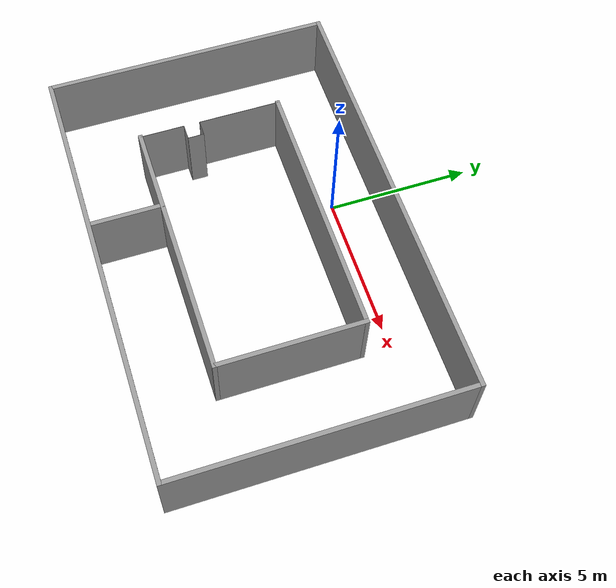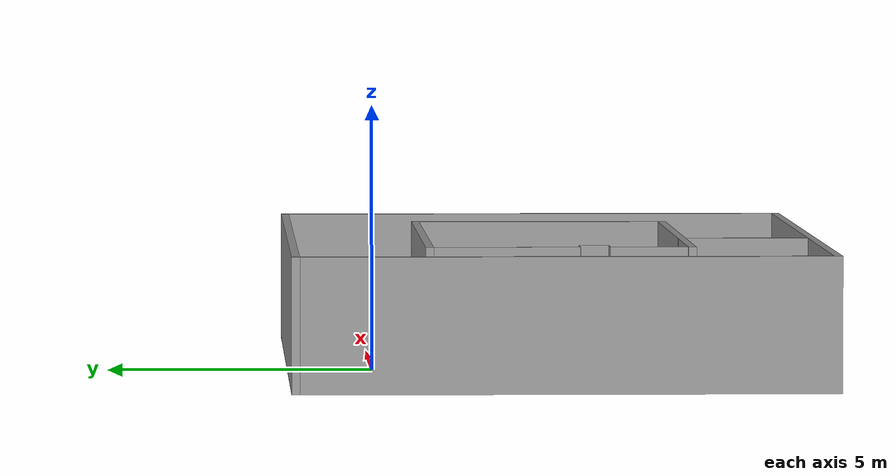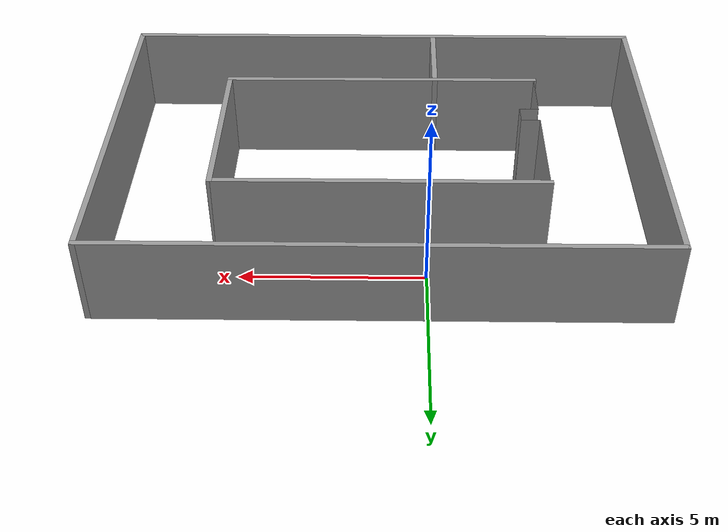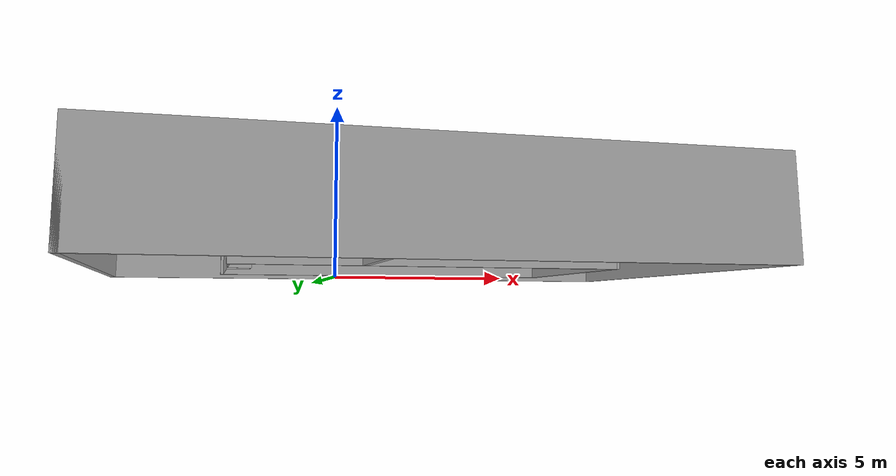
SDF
<?xml version='1.0'?>
<sdf version='1.6'>
  <model name='circle_parking'>
    <pose frame=''>1.24064 -3.39128 0 0 -0 0</pose>
    <link name='Wall_12'>
      <collision name='Wall_12_Collision'>
        <geometry>
          <box>
            <size>15 0.15 2.5</size>
          </box>
        </geometry>
        <pose frame=''>0 0 1.25 0 -0 0</pose>
      </collision>
      <visual name='Wall_12_Visual'>
        <pose frame=''>0 0 1.25 0 -0 0</pose>
        <geometry>
          <box>
            <size>15 0.15 2.5</size>
          </box>
        </geometry>
        <material>
          <script>
            <uri>file://media/materials/scripts/gazebo.material</uri>
            <name>Gazebo/Grey</name>
          </script>
          <ambient>1 1 1 1</ambient>
        </material>
        <meta>
          <layer>0</layer>
        </meta>
      </visual>
      <pose frame=''>0 -4.925 0 0 -0 0</pose>
    </link>
    <link name='Wall_13'>
      <collision name='Wall_13_Collision'>
        <geometry>
          <box>
            <size>10 0.15 2.5</size>
          </box>
        </geometry>
        <pose frame=''>0 0 1.25 0 -0 0</pose>
      </collision>
      <visual name='Wall_13_Visual'>
        <pose frame=''>0 0 1.25 0 -0 0</pose>
        <geometry>
          <box>
            <size>10 0.15 2.5</size>
          </box>
        </geometry>
        <material>
          <script>
            <uri>file://media/materials/scripts/gazebo.material</uri>
            <name>Gazebo/Grey</name>
          </script>
          <ambient>1 1 1 1</ambient>
        </material>
        <meta>
          <layer>0</layer>
        </meta>
      </visual>
      <pose frame=''>7.425 -0 0 0 -0 1.5708</pose>
    </link>
    <link name='Wall_14'>
      <collision name='Wall_14_Collision'>
        <geometry>
          <box>
            <size>15 0.15 2.5</size>
          </box>
        </geometry>
        <pose frame=''>0 0 1.25 0 -0 0</pose>
      </collision>
      <visual name='Wall_14_Visual'>
        <pose frame=''>0 0 1.25 0 -0 0</pose>
        <geometry>
          <box>
            <size>15 0.15 2.5</size>
          </box>
        </geometry>
        <material>
          <script>
            <uri>file://media/materials/scripts/gazebo.material</uri>
            <name>Gazebo/Grey</name>
          </script>
          <ambient>1 1 1 1</ambient>
        </material>
        <meta>
          <layer>0</layer>
        </meta>
      </visual>
      <pose frame=''>0 4.925 0 0 -0 3.14159</pose>
    </link>
    <link name='Wall_15'>
      <collision name='Wall_15_Collision'>
        <geometry>
          <box>
            <size>10 0.15 2.5</size>
          </box>
        </geometry>
        <pose frame=''>0 0 1.25 0 -0 0</pose>
      </collision>
      <visual name='Wall_15_Visual'>
        <pose frame=''>0 0 1.25 0 -0 0</pose>
        <geometry>
          <box>
            <size>10 0.15 2.5</size>
          </box>
        </geometry>
        <material>
          <script>
            <uri>file://media/materials/scripts/gazebo.material</uri>
            <name>Gazebo/Grey</name>
          </script>
          <ambient>1 1 1 1</ambient>
        </material>
        <meta>
          <layer>0</layer>
        </meta>
      </visual>
      <pose frame=''>-7.425 -0 0 0 -0 -1.5708</pose>
    </link>
    <link name='Wall_17'>
      <collision name='Wall_17_Collision'>
        <geometry>
          <box>
            <size>9 0.15 2.5</size>
          </box>
        </geometry>
        <pose frame=''>0 0 1.25 0 -0 0</pose>
      </collision>
      <visual name='Wall_17_Visual'>
        <pose frame=''>0 0 1.25 0 -0 0</pose>
        <geometry>
          <box>
            <size>9 0.15 2.5</size>
          </box>
        </geometry>
        <material>
          <script>
            <uri>file://media/materials/scripts/gazebo.material</uri>
            <name>Gazebo/Grey</name>
          </script>
          <ambient>1 1 1 1</ambient>
        </material>
        <meta>
          <layer>0</layer>
        </meta>
      </visual>
      <pose frame=''>0.014124 2.40104 0 0 -0 -5.5e-05</pose>
    </link>
    <link name='Wall_18'>
      <collision name='Wall_18_Collision'>
        <geometry>
          <box>
            <size>5 0.15 2.5</size>
          </box>
        </geometry>
        <pose frame=''>0 0 1.25 0 -0 0</pose>
      </collision>
      <visual name='Wall_18_Visual'>
        <pose frame=''>0 0 1.25 0 -0 0</pose>
        <geometry>
          <box>
            <size>5 0.15 2.5</size>
          </box>
        </geometry>
        <material>
          <script>
            <uri>file://media/materials/scripts/gazebo.material</uri>
            <name>Gazebo/Grey</name>
          </script>
          <ambient>1 1 1 1</ambient>
        </material>
        <meta>
          <layer>0</layer>
        </meta>
      </visual>
      <pose frame=''>4.43889 -0.024203 0 0 -0 -1.5708</pose>
    </link>
    <link name='Wall_19'>
      <collision name='Wall_19_Collision'>
        <geometry>
          <box>
            <size>9 0.15 2.5</size>
          </box>
        </geometry>
        <pose frame=''>0 0 1.25 0 -0 0</pose>
      </collision>
      <visual name='Wall_19_Visual'>
        <pose frame=''>0 0 1.25 0 -0 0</pose>
        <geometry>
          <box>
            <size>9 0.15 2.5</size>
          </box>
        </geometry>
        <material>
          <script>
            <uri>file://media/materials/scripts/gazebo.material</uri>
            <name>Gazebo/Grey</name>
          </script>
          <ambient>1 1 1 1</ambient>
        </material>
        <meta>
          <layer>0</layer>
        </meta>
      </visual>
      <pose frame=''>0.014124 -2.45896 0 0 -0 -3.13939</pose>
    </link>
    <link name='Wall_22'>
      <collision name='Wall_22_Collision'>
        <geometry>
          <box>
            <size>2.5 0.15 2.5</size>
          </box>
        </geometry>
        <pose frame=''>0 0 1.25 0 -0 0</pose>
      </collision>
      <visual name='Wall_22_Visual'>
        <pose frame=''>0 0 1.25 0 -0 0</pose>
        <geometry>
          <box>
            <size>2.5 0.15 2.5</size>
          </box>
        </geometry>
        <material>
          <script>
            <uri>file://media/materials/scripts/gazebo.material</uri>
            <name>Gazebo/Grey</name>
          </script>
          <ambient>1 1 1 1</ambient>
        </material>
        <meta>
          <layer>0</layer>
        </meta>
      </visual>
      <pose frame=''>-1.5372 -3.63716 0 0 -0 -1.5708</pose>
    </link>
    <link name='Wall_28'>
      <collision name='Wall_28_Collision'>
        <geometry>
          <box>
            <size>1.53 0.01 2.5</size>
          </box>
        </geometry>
        <pose frame=''>0 0 1.25 0 -0 0</pose>
      </collision>
      <visual name='Wall_28_Visual'>
        <pose frame=''>0 0 1.25 0 -0 0</pose>
        <geometry>
          <box>
            <size>1.53 0.01 2.5</size>
          </box>
        </geometry>
        <material>
          <script>
            <uri>file://media/materials/scripts/gazebo.material</uri>
            <name>Gazebo/Grey</name>
          </script>
          <ambient>1 1 1 1</ambient>
        </material>
        <meta>
          <layer>0</layer>
        </meta>
      </visual>
      <pose frame=''>-4.41064 -1.70872 0 0 -0 -1.5708</pose>
    </link>
    <link name='Wall_30'>
      <collision name='Wall_30_Collision'>
        <geometry>
          <box>
            <size>2.81 0.01 2.5</size>
          </box>
        </geometry>
        <pose frame=''>0 0 1.25 0 -0 0</pose>
      </collision>
      <visual name='Wall_30_Visual'>
        <pose frame=''>0 0 1.25 0 -0 0</pose>
        <geometry>
          <box>
            <size>2.81 0.01 2.5</size>
          </box>
        </geometry>
        <material>
          <script>
            <uri>file://media/materials/scripts/gazebo.material</uri>
            <name>Gazebo/Grey</name>
          </script>
          <ambient>1 1 1 1</ambient>
        </material>
        <meta>
          <layer>0</layer>
        </meta>
      </visual>
      <pose frame=''>-4.41064 1.00128 0 0 -0 1.5708</pose>
    </link>
    <link name='Wall_39'>
      <collision name='Wall_39_Collision'>
        <geometry>
          <box>
            <size>0.54 0.01 2.5</size>
          </box>
        </geometry>
        <pose frame=''>0 0 1.25 0 -0 0</pose>
      </collision>
      <visual name='Wall_39_Visual'>
        <pose frame=''>0 0 1.25 0 -0 0</pose>
        <geometry>
          <box>
            <size>0.54 0.01 2.5</size>
          </box>
        </geometry>
        <material>
          <script>
            <uri>file://media/materials/scripts/gazebo.material</uri>
            <name>Gazebo/Grey</name>
          </script>
          <ambient>1 1 1 1</ambient>
        </material>
        <meta>
          <layer>0</layer>
        </meta>
      </visual>
      <pose frame=''>-4.14564 -0.39872 0 0 -0 0</pose>
    </link>
    <link name='Wall_41'>
      <collision name='Wall_41_Collision'>
        <geometry>
          <box>
            <size>0.54 0.01 2.5</size>
          </box>
        </geometry>
        <pose frame=''>0 0 1.25 0 -0 0</pose>
      </collision>
      <visual name='Wall_41_Visual'>
        <pose frame=''>0 0 1.25 0 -0 0</pose>
        <geometry>
          <box>
            <size>0.54 0.01 2.5</size>
          </box>
        </geometry>
        <material>
          <script>
            <uri>file://media/materials/scripts/gazebo.material</uri>
            <name>Gazebo/Grey</name>
          </script>
          <ambient>1 1 1 1</ambient>
        </material>
        <meta>
          <layer>0</layer>
        </meta>
      </visual>
      <pose frame=''>-4.14564 -0.94872 0 0 -0 0</pose>
    </link>
    <link name='Wall_43'>
      <collision name='Wall_43_Collision'>
        <geometry>
          <box>
            <size>0.56 0.01 2.5</size>
          </box>
        </geometry>
        <pose frame=''>0 0 1.25 0 -0 0</pose>
      </collision>
      <visual name='Wall_43_Visual'>
        <pose frame=''>0 0 1.25 0 -0 0</pose>
        <geometry>
          <box>
            <size>0.56 0.01 2.5</size>
          </box>
        </geometry>
        <material>
          <script>
            <uri>file://media/materials/scripts/gazebo.material</uri>
            <name>Gazebo/Grey</name>
          </script>
          <ambient>1 1 1 1</ambient>
        </material>
        <meta>
          <layer>0</layer>
        </meta>
      </visual>
      <pose frame=''>-3.88064 -0.67372 0 0 -0 -1.5708</pose>
    </link>
    <static>1</static>
  </model>
</sdf>
